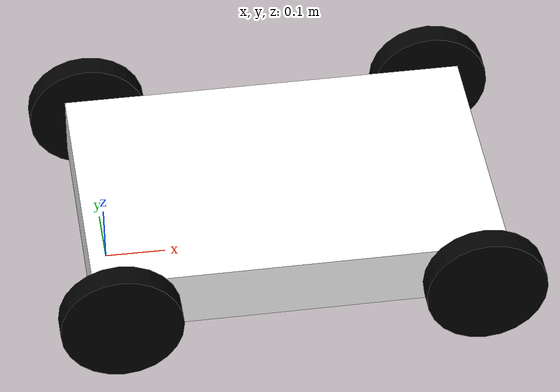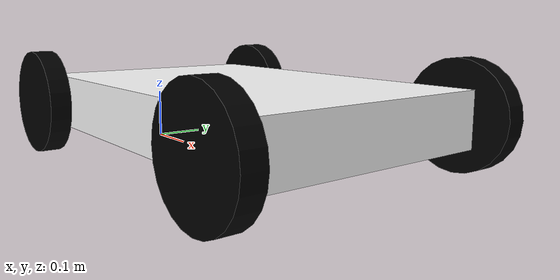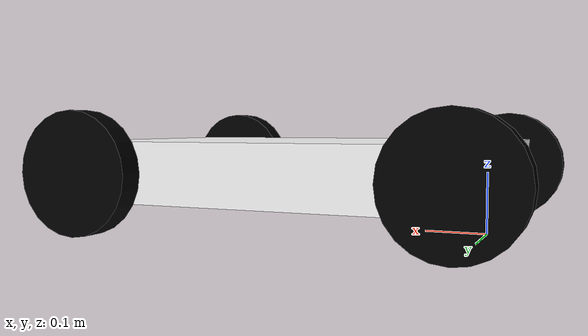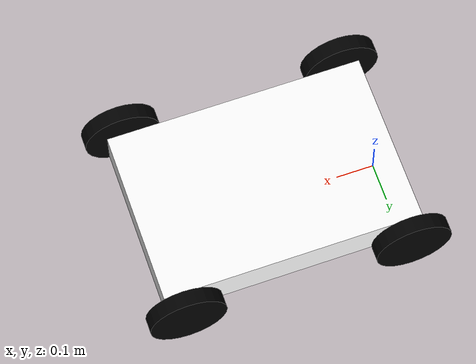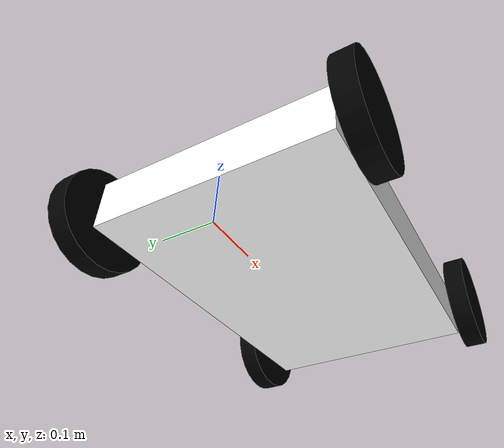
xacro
<?xml version="1.0" ?>
<robot name="wheeltec_robot" xmlns:xacro="http://www.ros.org/wiki/xacro">

    <!-- 左右两个轮子间距是0.265*2=0.53 -->
    <!-- 前后两个轮子距离是0.595 -->

    <!-- 定义参数 -->
    <xacro:property name="wheel_radius" value="0.10"/>
    <xacro:property name="wheel_length" value="0.04"/>
    <xacro:property name="base_size_x" value="0.68"/>
    <xacro:property name="base_size_y" value="0.46"/>
    <xacro:property name="base_size_z" value="0.10"/>
    <xacro:property name="base_mass" value="40.0"/>
    <xacro:property name="wheel_mass" value="5.0"/>

    <!-- 定义底盘 -->
    <link name="base_link">
        <!-- 外观 -->
        <visual>
            <origin xyz="0.30 0 0.10" rpy="0 0 0" />
            <geometry>
                <box size="${base_size_x} ${base_size_y} ${base_size_z}"/>
            </geometry>
            <material name="white">
                <color rgba="1 1 1 1"/>
            </material>
        </visual>
        <!-- 碰撞属性 -->
        <collision>
            <origin xyz="0.30 0 0.10" rpy="0 0 0" />
            <geometry>
                <box size="${base_size_x} ${base_size_y} ${base_size_z}"/>
            </geometry>
        </collision>
        <!-- 惯性属性 -->
        <inertial>
            <mass value="${base_mass}"/>
            <origin xyz="0 0 0" rpy="0 0 0"/>
            <inertia ixx="${base_mass*(base_size_z*base_size_z + base_size_x*base_size_x)/12}" ixy = "0" ixz = "0"
                     iyy="${base_mass*(base_size_y*base_size_y + base_size_x*base_size_x)/12}" iyz= "0"
                     izz="${base_mass*(base_size_y*base_size_y + base_size_z*base_size_z)/12}" />
        </inertial>
    </link>
    <gazebo reference="base_link">
        <material>Gazebo/White</material>
    </gazebo>

    <!-- 左轮 -->
    <joint name="left_wheel_joint" type="continuous">
        <origin xyz="0 0.265 0.10" rpy="0 0 0"/>
        <parent link="base_link"/>
        <child link="left_wheel_link"/>
        <axis xyz="0 1 0"/>
    </joint>

    <link name="left_wheel_link">
        <visual>
            <origin xyz="0 0 0" rpy="-1.5707963 0 0" />
            <geometry>
                <cylinder radius="${wheel_radius}" length="${wheel_length}"/>
            </geometry>
            <material name="black">
                <color rgba="0 0 0 1"/>
            </material>
        </visual>
        <collision>
            <origin xyz="0 0 0" rpy="-1.5707963 0 0" />
            <geometry>
                <cylinder radius="${wheel_radius}" length="${wheel_length}"/>
            </geometry>
        </collision>
        <inertial>
            <mass value="${wheel_mass}"/>
            <origin xyz="0 0 0"/>
            <inertia ixx="${wheel_mass*(3*wheel_radius*wheel_radius+wheel_length*wheel_length)/12}" ixy = "0" ixz = "0"
                iyy="${wheel_mass*(3*wheel_radius*wheel_radius+wheel_length*wheel_length)/12}" iyz = "0"
                izz="${wheel_mass*wheel_radius*wheel_radius/2}" />
        </inertial>
    </link>
    <gazebo reference="left_wheel_link">
        <material>Gazebo/Black</material>
    </gazebo>

    <!-- 右轮 -->
    <joint name="right_wheel_joint" type="continuous">
        <origin xyz="0 -0.265 0.10" rpy="1.57 0 0"/>
        <parent link="base_link"/>
        <child link="right_wheel_link"/>
        <axis xyz="0 0 1"/>
    </joint>

    <link name="right_wheel_link">
        <visual>
            <origin xyz="0 0 0" rpy="0 0 0" />
            <geometry>
                <cylinder radius="${wheel_radius}" length="${wheel_length}"/>
            </geometry>
            <material name="black">
                <color rgba="0 0 0 1"/>
            </material>
        </visual>
        <collision>
            <origin xyz="0 0 0" rpy="0 0 0" />
            <geometry>
                <cylinder radius="${wheel_radius}" length="${wheel_length}"/>
            </geometry>
        </collision>
        <inertial>
            <mass value="${wheel_mass}"/>
            <origin xyz="0 0 0" rpy="0 0 0"/>
            <inertia ixx="${wheel_mass*(3*wheel_radius*wheel_radius+wheel_length*wheel_length)/12}" ixy = "0" ixz = "0"
                iyy="${wheel_mass*(3*wheel_radius*wheel_radius+wheel_length*wheel_length)/12}" iyz = "0"
                izz="${wheel_mass*wheel_radius*wheel_radius/2}" />
        </inertial>
    </link>
    <gazebo reference="right_wheel_link">
        <material>Gazebo/Black</material>
    </gazebo>

    <!-- 左前轮 -->
    <joint name="left_front_joint" type="continuous">
        <origin xyz="0.595 0.265 0.10" rpy="1.57 0 0"/>
        <parent link="base_link"/>
        <child link="left_front_link"/>
        <axis xyz="0 1 0"/>
    </joint>

    <link name="left_front_link">
        <visual>
            <origin xyz="0 0 0" rpy="0 0 0" />
            <geometry>
                <cylinder radius="${wheel_radius}" length="${wheel_length}"/>
            </geometry>
            <material name="black">
                <color rgba="0 0 0 1"/>
            </material>
        </visual>
        <collision>
            <origin xyz="0 0 0" rpy="0 0 0" />
            <geometry>
                <cylinder radius="${wheel_radius}" length="${wheel_length}"/>
            </geometry>
        </collision>
        <inertial>
            <mass value="${wheel_mass}"/>
            <origin xyz="0 0 0" rpy="0 0 0"/>
            <inertia ixx="${wheel_mass*(3*wheel_radius*wheel_radius+wheel_length*wheel_length)/12}" ixy = "0" ixz = "0"
                iyy="${wheel_mass*(3*wheel_radius*wheel_radius+wheel_length*wheel_length)/12}" iyz = "0"
                izz="${wheel_mass*wheel_radius*wheel_radius/2}" />
        </inertial>
    </link>
    <gazebo reference="left_front_link">
        <material>Gazebo/Black</material>
    </gazebo>
    <!-- 右前轮 -->
    <joint name="right_front_joint" type="continuous">
        <origin xyz="0.595 -0.265 0.10" rpy="1.57 0 0"/>
        <parent link="base_link"/>
        <child link="right_front_link"/>
        <axis xyz="0 1 0"/>
    </joint>

    <link name="right_front_link">
        <visual>
            <origin xyz="0 0 0" rpy="0 0 0" />
            <geometry>
                <cylinder radius="${wheel_radius}" length="${wheel_length}"/>
            </geometry>
            <material name="black">
                <color rgba="0 0 0 1"/>
            </material>
        </visual>
        <collision>
            <origin xyz="0 0 0" rpy="0 0 0" />
            <geometry>
                <cylinder radius="${wheel_radius}" length="${wheel_length}"/>
            </geometry>
        </collision>
        <inertial>
            <mass value="${wheel_mass}"/>
            <origin xyz="0 0 0" rpy="0 0 0"/>
            <inertia ixx="${wheel_mass*(3*wheel_radius*wheel_radius+wheel_length*wheel_length)/12}" ixy = "0" ixz = "0"
                iyy="${wheel_mass*(3*wheel_radius*wheel_radius+wheel_length*wheel_length)/12}" iyz = "0"
                izz="${wheel_mass*wheel_radius*wheel_radius/2}" />
        </inertial>
    </link>
    <gazebo reference="right_front_link">
        <material>Gazebo/Black</material>
    </gazebo>
</robot>
